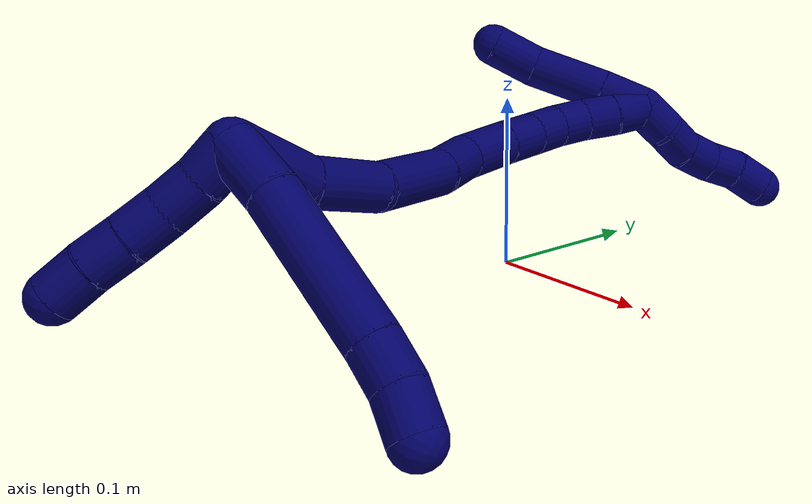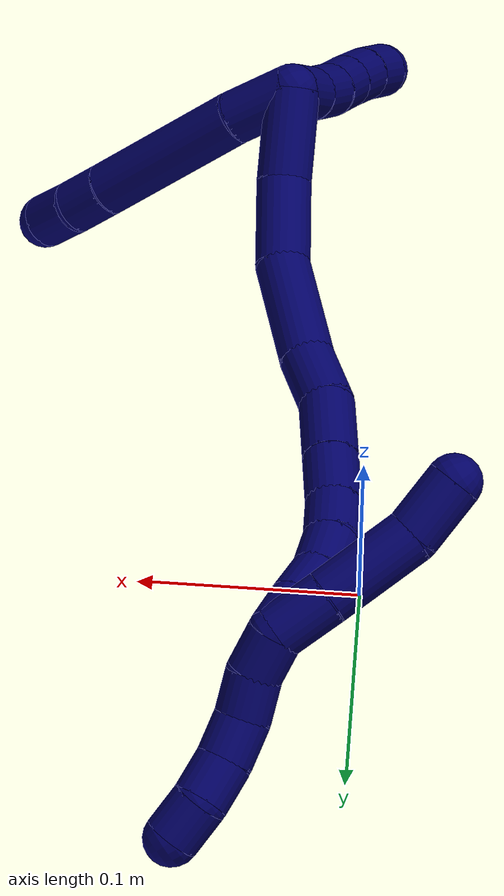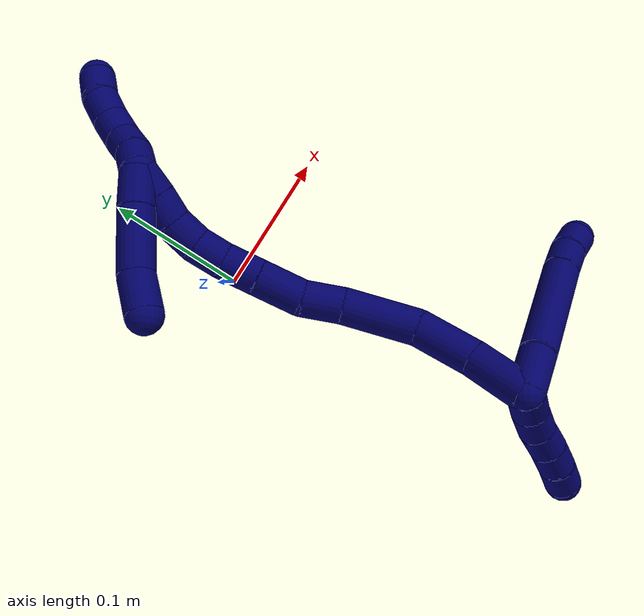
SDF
<sdf version="1.7">
 <world name="default">
  <model name="7">
   <static>0</static>
   <link name="7">
    <collision name="collision-cylinder-e_1_2_8">
     <pose>0.000372 -0.006271 -0.014303 2.7284 0.023795 0.113415</pose>
     <geometry><cylinder><radius>0.0125</radius><length>0.031244</length></cylinder></geometry>
     <surface>
      <friction><ode><mu>1.16</mu><mu2>1.16</mu2><slip1>0</slip1><slip2>0</slip2></ode></friction>
      <contact><ode><kp>1e+06</kp><kd>1</kd><max_vel>0</max_vel><min_depth>0.001</min_depth></ode></contact>
     </surface>
    </collision>
    <visual name="visual-cylinder-e_1_2_8">
     <pose>0.000372 -0.006271 -0.014303 2.7284 0.023795 0.113415</pose>
     <geometry><cylinder><radius>0.0125</radius><length>0.031244</length></cylinder></geometry>
     <material><ambient>0.003922 0 0.403922 1</ambient></material>
    </visual>
    <collision name="collision-cylinder-e_2_8_9">
     <pose>-0.002157 -0.030456 -0.062523 2.65566 -0.075473 -0.302315</pose>
     <geometry><cylinder><radius>0.0125</radius><length>0.076933</length></cylinder></geometry>
     <surface>
      <friction><ode><mu>1.16</mu><mu2>1.16</mu2><slip1>0</slip1><slip2>0</slip2></ode></friction>
      <contact><ode><kp>1e+06</kp><kd>1</kd><max_vel>0</max_vel><min_depth>0.001</min_depth></ode></contact>
     </surface>
    </collision>
    <visual name="visual-cylinder-e_2_8_9">
     <pose>-0.002157 -0.030456 -0.062523 2.65566 -0.075473 -0.302315</pose>
     <geometry><cylinder><radius>0.0125</radius><length>0.076933</length></cylinder></geometry>
     <material><ambient>0.003922 0 0.403922 1</ambient></material>
    </visual>
    <collision name="collision-cylinder-e_3_9_10">
     <pose>-0.005985 -0.053812 -0.105252 2.58838 -0.089312 -0.312255</pose>
     <geometry><cylinder><radius>0.0125</radius><length>0.020798</length></cylinder></geometry>
     <surface>
      <friction><ode><mu>1.16</mu><mu2>1.16</mu2><slip1>0</slip1><slip2>0</slip2></ode></friction>
      <contact><ode><kp>1e+06</kp><kd>1</kd><max_vel>0</max_vel><min_depth>0.001</min_depth></ode></contact>
     </surface>
    </collision>
    <visual name="visual-cylinder-e_3_9_10">
     <pose>-0.005985 -0.053812 -0.105252 2.58838 -0.089312 -0.312255</pose>
     <geometry><cylinder><radius>0.0125</radius><length>0.020798</length></cylinder></geometry>
     <material><ambient>0.003922 0 0.403922 1</ambient></material>
    </visual>
    <collision name="collision-cylinder-e_4_10_6">
     <pose>-0.008133 -0.066234 -0.121831 2.40944 -0.116329 -0.301487</pose>
     <geometry><cylinder><radius>0.0125</radius><length>0.021025</length></cylinder></geometry>
     <surface>
      <friction><ode><mu>1.16</mu><mu2>1.16</mu2><slip1>0</slip1><slip2>0</slip2></ode></friction>
      <contact><ode><kp>1e+06</kp><kd>1</kd><max_vel>0</max_vel><min_depth>0.001</min_depth></ode></contact>
     </surface>
    </collision>
    <visual name="visual-cylinder-e_4_10_6">
     <pose>-0.008133 -0.066234 -0.121831 2.40944 -0.116329 -0.301487</pose>
     <geometry><cylinder><radius>0.0125</radius><length>0.021025</length></cylinder></geometry>
     <material><ambient>0.003922 0 0.403922 1</ambient></material>
    </visual>
    <collision name="collision-cylinder-e_1_2_11">
     <pose>-0.005584 -0.007668 0.003166 1.17918 -0.592457 -0.402808</pose>
     <geometry><cylinder><radius>0.0125</radius><length>0.02</length></cylinder></geometry>
     <surface>
      <friction><ode><mu>1.16</mu><mu2>1.16</mu2><slip1>0</slip1><slip2>0</slip2></ode></friction>
      <contact><ode><kp>1e+06</kp><kd>1</kd><max_vel>0</max_vel><min_depth>0.001</min_depth></ode></contact>
     </surface>
    </collision>
    <visual name="visual-cylinder-e_1_2_11">
     <pose>-0.005584 -0.007668 0.003166 1.17918 -0.592457 -0.402808</pose>
     <geometry><cylinder><radius>0.0125</radius><length>0.02</length></cylinder></geometry>
     <material><ambient>0.003922 0 0.403922 1</ambient></material>
    </visual>
    <collision name="collision-cylinder-e_2_11_12">
     <pose>-0.015569 -0.023269 0.010538 1.08343 -0.455757 -0.277314</pose>
     <geometry><cylinder><radius>0.0125</radius><length>0.02</length></cylinder></geometry>
     <surface>
      <friction><ode><mu>1.16</mu><mu2>1.16</mu2><slip1>0</slip1><slip2>0</slip2></ode></friction>
      <contact><ode><kp>1e+06</kp><kd>1</kd><max_vel>0</max_vel><min_depth>0.001</min_depth></ode></contact>
     </surface>
    </collision>
    <visual name="visual-cylinder-e_2_11_12">
     <pose>-0.015569 -0.023269 0.010538 1.08343 -0.455757 -0.277314</pose>
     <geometry><cylinder><radius>0.0125</radius><length>0.02</length></cylinder></geometry>
     <material><ambient>0.003922 0 0.403922 1</ambient></material>
    </visual>
    <collision name="collision-cylinder-e_3_12_13">
     <pose>-0.023209 -0.039675 0.018954 1.10951 -0.329806 -0.205516</pose>
     <geometry><cylinder><radius>0.0125</radius><length>0.02</length></cylinder></geometry>
     <surface>
      <friction><ode><mu>1.16</mu><mu2>1.16</mu2><slip1>0</slip1><slip2>0</slip2></ode></friction>
      <contact><ode><kp>1e+06</kp><kd>1</kd><max_vel>0</max_vel><min_depth>0.001</min_depth></ode></contact>
     </surface>
    </collision>
    <visual name="visual-cylinder-e_3_12_13">
     <pose>-0.023209 -0.039675 0.018954 1.10951 -0.329806 -0.205516</pose>
     <geometry><cylinder><radius>0.0125</radius><length>0.02</length></cylinder></geometry>
     <material><ambient>0.003922 0 0.403922 1</ambient></material>
    </visual>
    <collision name="collision-cylinder-e_4_13_14">
     <pose>-0.029998 -0.056259 0.027813 1.05045 -0.362897 -0.211849</pose>
     <geometry><cylinder><radius>0.0125</radius><length>0.02</length></cylinder></geometry>
     <surface>
      <friction><ode><mu>1.16</mu><mu2>1.16</mu2><slip1>0</slip1><slip2>0</slip2></ode></friction>
      <contact><ode><kp>1e+06</kp><kd>1</kd><max_vel>0</max_vel><min_depth>0.001</min_depth></ode></contact>
     </surface>
    </collision>
    <visual name="visual-cylinder-e_4_13_14">
     <pose>-0.029998 -0.056259 0.027813 1.05045 -0.362897 -0.211849</pose>
     <geometry><cylinder><radius>0.0125</radius><length>0.02</length></cylinder></geometry>
     <material><ambient>0.003922 0 0.403922 1</ambient></material>
    </visual>
    <collision name="collision-cylinder-e_5_14_5">
     <pose>-0.037934 -0.072318 0.036655 1.08532 -0.454046 -0.276835</pose>
     <geometry><cylinder><radius>0.0125</radius><length>0.02</length></cylinder></geometry>
     <surface>
      <friction><ode><mu>1.16</mu><mu2>1.16</mu2><slip1>0</slip1><slip2>0</slip2></ode></friction>
      <contact><ode><kp>1e+06</kp><kd>1</kd><max_vel>0</max_vel><min_depth>0.001</min_depth></ode></contact>
     </surface>
    </collision>
    <visual name="visual-cylinder-e_5_14_5">
     <pose>-0.037934 -0.072318 0.036655 1.08532 -0.454046 -0.276835</pose>
     <geometry><cylinder><radius>0.0125</radius><length>0.02</length></cylinder></geometry>
     <material><ambient>0.003922 0 0.403922 1</ambient></material>
    </visual>
    <collision name="collision-cylinder-e_1_2_15">
     <pose>-0.014411 0.007955 -0.013148 -2.59746 -0.753267 1.91295</pose>
     <geometry><cylinder><radius>0.0125</radius><length>0.042134</length></cylinder></geometry>
     <surface>
      <friction><ode><mu>1.16</mu><mu2>1.16</mu2><slip1>0</slip1><slip2>0</slip2></ode></friction>
      <contact><ode><kp>1e+06</kp><kd>1</kd><max_vel>0</max_vel><min_depth>0.001</min_depth></ode></contact>
     </surface>
    </collision>
    <visual name="visual-cylinder-e_1_2_15">
     <pose>-0.014411 0.007955 -0.013148 -2.59746 -0.753267 1.91295</pose>
     <geometry><cylinder><radius>0.0125</radius><length>0.042134</length></cylinder></geometry>
     <material><ambient>0.003922 0 0.403922 1</ambient></material>
    </visual>
    <collision name="collision-cylinder-e_2_15_16">
     <pose>-0.040434 0.029324 -0.036821 -2.23613 -0.59796 1.12957</pose>
     <geometry><cylinder><radius>0.0125</radius><length>0.041257</length></cylinder></geometry>
     <surface>
      <friction><ode><mu>1.16</mu><mu2>1.16</mu2><slip1>0</slip1><slip2>0</slip2></ode></friction>
      <contact><ode><kp>1e+06</kp><kd>1</kd><max_vel>0</max_vel><min_depth>0.001</min_depth></ode></contact>
     </surface>
    </collision>
    <visual name="visual-cylinder-e_2_15_16">
     <pose>-0.040434 0.029324 -0.036821 -2.23613 -0.59796 1.12957</pose>
     <geometry><cylinder><radius>0.0125</radius><length>0.041257</length></cylinder></geometry>
     <material><ambient>0.003922 0 0.403922 1</ambient></material>
    </visual>
    <collision name="collision-cylinder-e_3_16_17">
     <pose>-0.066387 0.063122 -0.054211 -1.89561 -0.587982 0.797673</pose>
     <geometry><cylinder><radius>0.0125</radius><length>0.051705</length></cylinder></geometry>
     <surface>
      <friction><ode><mu>1.16</mu><mu2>1.16</mu2><slip1>0</slip1><slip2>0</slip2></ode></friction>
      <contact><ode><kp>1e+06</kp><kd>1</kd><max_vel>0</max_vel><min_depth>0.001</min_depth></ode></contact>
     </surface>
    </collision>
    <visual name="visual-cylinder-e_3_16_17">
     <pose>-0.066387 0.063122 -0.054211 -1.89561 -0.587982 0.797673</pose>
     <geometry><cylinder><radius>0.0125</radius><length>0.051705</length></cylinder></geometry>
     <material><ambient>0.003922 0 0.403922 1</ambient></material>
    </visual>
    <collision name="collision-cylinder-e_4_17_18">
     <pose>-0.087535 0.095444 -0.06283 -1.71674 -0.513819 0.590528</pose>
     <geometry><cylinder><radius>0.0125</radius><length>0.027705</length></cylinder></geometry>
     <surface>
      <friction><ode><mu>1.16</mu><mu2>1.16</mu2><slip1>0</slip1><slip2>0</slip2></ode></friction>
      <contact><ode><kp>1e+06</kp><kd>1</kd><max_vel>0</max_vel><min_depth>0.001</min_depth></ode></contact>
     </surface>
    </collision>
    <visual name="visual-cylinder-e_4_17_18">
     <pose>-0.087535 0.095444 -0.06283 -1.71674 -0.513819 0.590528</pose>
     <geometry><cylinder><radius>0.0125</radius><length>0.027705</length></cylinder></geometry>
     <material><ambient>0.003922 0 0.403922 1</ambient></material>
    </visual>
    <collision name="collision-cylinder-e_5_18_19">
     <pose>-0.100238 0.121027 -0.070321 -1.96874 -0.378887 0.561928</pose>
     <geometry><cylinder><radius>0.0125</radius><length>0.031868</length></cylinder></geometry>
     <surface>
      <friction><ode><mu>1.16</mu><mu2>1.16</mu2><slip1>0</slip1><slip2>0</slip2></ode></friction>
      <contact><ode><kp>1e+06</kp><kd>1</kd><max_vel>0</max_vel><min_depth>0.001</min_depth></ode></contact>
     </surface>
    </collision>
    <visual name="visual-cylinder-e_5_18_19">
     <pose>-0.100238 0.121027 -0.070321 -1.96874 -0.378887 0.561928</pose>
     <geometry><cylinder><radius>0.0125</radius><length>0.031868</length></cylinder></geometry>
     <material><ambient>0.003922 0 0.403922 1</ambient></material>
    </visual>
    <collision name="collision-cylinder-e_6_19_20">
     <pose>-0.110971 0.145186 -0.080666 -1.98393 -0.398995 0.600103</pose>
     <geometry><cylinder><radius>0.0125</radius><length>0.024911</length></cylinder></geometry>
     <surface>
      <friction><ode><mu>1.16</mu><mu2>1.16</mu2><slip1>0</slip1><slip2>0</slip2></ode></friction>
      <contact><ode><kp>1e+06</kp><kd>1</kd><max_vel>0</max_vel><min_depth>0.001</min_depth></ode></contact>
     </surface>
    </collision>
    <visual name="visual-cylinder-e_6_19_20">
     <pose>-0.110971 0.145186 -0.080666 -1.98393 -0.398995 0.600103</pose>
     <geometry><cylinder><radius>0.0125</radius><length>0.024911</length></cylinder></geometry>
     <material><ambient>0.003922 0 0.403922 1</ambient></material>
    </visual>
    <collision name="collision-cylinder-e_7_20_21">
     <pose>-0.118851 0.164368 -0.089726 -2.04514 -0.302467 0.489123</pose>
     <geometry><cylinder><radius>0.0125</radius><length>0.020418</length></cylinder></geometry>
     <surface>
      <friction><ode><mu>1.16</mu><mu2>1.16</mu2><slip1>0</slip1><slip2>0</slip2></ode></friction>
      <contact><ode><kp>1e+06</kp><kd>1</kd><max_vel>0</max_vel><min_depth>0.001</min_depth></ode></contact>
     </surface>
    </collision>
    <visual name="visual-cylinder-e_7_20_21">
     <pose>-0.118851 0.164368 -0.089726 -2.04514 -0.302467 0.489123</pose>
     <geometry><cylinder><radius>0.0125</radius><length>0.020418</length></cylinder></geometry>
     <material><ambient>0.003922 0 0.403922 1</ambient></material>
    </visual>
    <collision name="collision-cylinder-e_8_21_22">
     <pose>-0.12367 0.18091 -0.100081 -2.21428 -0.17873 0.354641</pose>
     <geometry><cylinder><radius>0.0125</radius><length>0.02</length></cylinder></geometry>
     <surface>
      <friction><ode><mu>1.16</mu><mu2>1.16</mu2><slip1>0</slip1><slip2>0</slip2></ode></friction>
      <contact><ode><kp>1e+06</kp><kd>1</kd><max_vel>0</max_vel><min_depth>0.001</min_depth></ode></contact>
     </surface>
    </collision>
    <visual name="visual-cylinder-e_8_21_22">
     <pose>-0.12367 0.18091 -0.100081 -2.21428 -0.17873 0.354641</pose>
     <geometry><cylinder><radius>0.0125</radius><length>0.02</length></cylinder></geometry>
     <material><ambient>0.003922 0 0.403922 1</ambient></material>
    </visual>
    <collision name="collision-cylinder-e_9_22_23">
     <pose>-0.125469 0.195456 -0.113433 -2.41094 -0.002135 0.005581</pose>
     <geometry><cylinder><radius>0.0125</radius><length>0.02</length></cylinder></geometry>
     <surface>
      <friction><ode><mu>1.16</mu><mu2>1.16</mu2><slip1>0</slip1><slip2>0</slip2></ode></friction>
      <contact><ode><kp>1e+06</kp><kd>1</kd><max_vel>0</max_vel><min_depth>0.001</min_depth></ode></contact>
     </surface>
    </collision>
    <visual name="visual-cylinder-e_9_22_23">
     <pose>-0.125469 0.195456 -0.113433 -2.41094 -0.002135 0.005581</pose>
     <geometry><cylinder><radius>0.0125</radius><length>0.02</length></cylinder></geometry>
     <material><ambient>0.003922 0 0.403922 1</ambient></material>
    </visual>
    <collision name="collision-cylinder-e_10_23_1">
     <pose>-0.125533 0.209405 -0.127741 -2.3269 -0.004287 0.009936</pose>
     <geometry><cylinder><radius>0.0125</radius><length>0.02</length></cylinder></geometry>
     <surface>
      <friction><ode><mu>1.16</mu><mu2>1.16</mu2><slip1>0</slip1><slip2>0</slip2></ode></friction>
      <contact><ode><kp>1e+06</kp><kd>1</kd><max_vel>0</max_vel><min_depth>0.001</min_depth></ode></contact>
     </surface>
    </collision>
    <visual name="visual-cylinder-e_10_23_1">
     <pose>-0.125533 0.209405 -0.127741 -2.3269 -0.004287 0.009936</pose>
     <geometry><cylinder><radius>0.0125</radius><length>0.02</length></cylinder></geometry>
     <material><ambient>0.003922 0 0.403922 1</ambient></material>
    </visual>
    <collision name="collision-cylinder-e_1_1_24">
     <pose>-0.125393 0.216272 -0.121276 0.030593 0.013735 0.00021</pose>
     <geometry><cylinder><radius>0.0125</radius><length>0.026667</length></cylinder></geometry>
     <surface>
      <friction><ode><mu>1.16</mu><mu2>1.16</mu2><slip1>0</slip1><slip2>0</slip2></ode></friction>
      <contact><ode><kp>1e+06</kp><kd>1</kd><max_vel>0</max_vel><min_depth>0.001</min_depth></ode></contact>
     </surface>
    </collision>
    <visual name="visual-cylinder-e_1_1_24">
     <pose>-0.125393 0.216272 -0.121276 0.030593 0.013735 0.00021</pose>
     <geometry><cylinder><radius>0.0125</radius><length>0.026667</length></cylinder></geometry>
     <material><ambient>0.003922 0 0.403922 1</ambient></material>
    </visual>
    <collision name="collision-cylinder-e_2_24_25">
     <pose>-0.125093 0.213714 -0.085732 0.096499 0.005222 0.000252</pose>
     <geometry><cylinder><radius>0.0125</radius><length>0.044643</length></cylinder></geometry>
     <surface>
      <friction><ode><mu>1.16</mu><mu2>1.16</mu2><slip1>0</slip1><slip2>0</slip2></ode></friction>
      <contact><ode><kp>1e+06</kp><kd>1</kd><max_vel>0</max_vel><min_depth>0.001</min_depth></ode></contact>
     </surface>
    </collision>
    <visual name="visual-cylinder-e_2_24_25">
     <pose>-0.125093 0.213714 -0.085732 0.096499 0.005222 0.000252</pose>
     <geometry><cylinder><radius>0.0125</radius><length>0.044643</length></cylinder></geometry>
     <material><ambient>0.003922 0 0.403922 1</ambient></material>
    </visual>
    <collision name="collision-cylinder-e_3_25_4">
     <pose>-0.12104 0.209564 -0.049866 0.145465 0.277977 0.020384</pose>
     <geometry><cylinder><radius>0.0125</radius><length>0.028689</length></cylinder></geometry>
     <surface>
      <friction><ode><mu>1.16</mu><mu2>1.16</mu2><slip1>0</slip1><slip2>0</slip2></ode></friction>
      <contact><ode><kp>1e+06</kp><kd>1</kd><max_vel>0</max_vel><min_depth>0.001</min_depth></ode></contact>
     </surface>
    </collision>
    <visual name="visual-cylinder-e_3_25_4">
     <pose>-0.12104 0.209564 -0.049866 0.145465 0.277977 0.020384</pose>
     <geometry><cylinder><radius>0.0125</radius><length>0.028689</length></cylinder></geometry>
     <material><ambient>0.003922 0 0.403922 1</ambient></material>
    </visual>
    <collision name="collision-cylinder-e_1_1_26">
     <pose>-0.130607 0.216462 -0.143242 3.1163 -0.527166 -3.04795</pose>
     <geometry><cylinder><radius>0.0125</radius><length>0.02</length></cylinder></geometry>
     <surface>
      <friction><ode><mu>1.16</mu><mu2>1.16</mu2><slip1>0</slip1><slip2>0</slip2></ode></friction>
      <contact><ode><kp>1e+06</kp><kd>1</kd><max_vel>0</max_vel><min_depth>0.001</min_depth></ode></contact>
     </surface>
    </collision>
    <visual name="visual-cylinder-e_1_1_26">
     <pose>-0.130607 0.216462 -0.143242 3.1163 -0.527166 -3.04795</pose>
     <geometry><cylinder><radius>0.0125</radius><length>0.02</length></cylinder></geometry>
     <material><ambient>0.003922 0 0.403922 1</ambient></material>
    </visual>
    <collision name="collision-cylinder-e_2_26_27">
     <pose>-0.142202 0.217499 -0.15932 -2.97433 -0.716036 2.70077</pose>
     <geometry><cylinder><radius>0.0125</radius><length>0.02</length></cylinder></geometry>
     <surface>
      <friction><ode><mu>1.16</mu><mu2>1.16</mu2><slip1>0</slip1><slip2>0</slip2></ode></friction>
      <contact><ode><kp>1e+06</kp><kd>1</kd><max_vel>0</max_vel><min_depth>0.001</min_depth></ode></contact>
     </surface>
    </collision>
    <visual name="visual-cylinder-e_2_26_27">
     <pose>-0.142202 0.217499 -0.15932 -2.97433 -0.716036 2.70077</pose>
     <geometry><cylinder><radius>0.0125</radius><length>0.02</length></cylinder></geometry>
     <material><ambient>0.003922 0 0.403922 1</ambient></material>
    </visual>
    <collision name="collision-cylinder-e_3_27_28">
     <pose>-0.153308 0.221934 -0.175081 -2.77668 -0.471546 1.83174</pose>
     <geometry><cylinder><radius>0.0125</radius><length>0.02</length></cylinder></geometry>
     <surface>
      <friction><ode><mu>1.16</mu><mu2>1.16</mu2><slip1>0</slip1><slip2>0</slip2></ode></friction>
      <contact><ode><kp>1e+06</kp><kd>1</kd><max_vel>0</max_vel><min_depth>0.001</min_depth></ode></contact>
     </surface>
    </collision>
    <visual name="visual-cylinder-e_3_27_28">
     <pose>-0.153308 0.221934 -0.175081 -2.77668 -0.471546 1.83174</pose>
     <geometry><cylinder><radius>0.0125</radius><length>0.02</length></cylinder></geometry>
     <material><ambient>0.003922 0 0.403922 1</ambient></material>
    </visual>
    <collision name="collision-cylinder-e_4_28_29">
     <pose>-0.160852 0.228793 -0.192204 -2.74555 -0.304776 1.30658</pose>
     <geometry><cylinder><radius>0.0125</radius><length>0.02</length></cylinder></geometry>
     <surface>
      <friction><ode><mu>1.16</mu><mu2>1.16</mu2><slip1>0</slip1><slip2>0</slip2></ode></friction>
      <contact><ode><kp>1e+06</kp><kd>1</kd><max_vel>0</max_vel><min_depth>0.001</min_depth></ode></contact>
     </surface>
    </collision>
    <visual name="visual-cylinder-e_4_28_29">
     <pose>-0.160852 0.228793 -0.192204 -2.74555 -0.304776 1.30658</pose>
     <geometry><cylinder><radius>0.0125</radius><length>0.02</length></cylinder></geometry>
     <material><ambient>0.003922 0 0.403922 1</ambient></material>
    </visual>
    <collision name="collision-cylinder-e_5_29_3">
     <pose>-0.167096 0.232961 -0.210451 -3.08999 -0.330332 2.83436</pose>
     <geometry><cylinder><radius>0.0125</radius><length>0.02</length></cylinder></geometry>
     <surface>
      <friction><ode><mu>1.16</mu><mu2>1.16</mu2><slip1>0</slip1><slip2>0</slip2></ode></friction>
      <contact><ode><kp>1e+06</kp><kd>1</kd><max_vel>0</max_vel><min_depth>0.001</min_depth></ode></contact>
     </surface>
    </collision>
    <visual name="visual-cylinder-e_5_29_3">
     <pose>-0.167096 0.232961 -0.210451 -3.08999 -0.330332 2.83436</pose>
     <geometry><cylinder><radius>0.0125</radius><length>0.02</length></cylinder></geometry>
     <material><ambient>0.003922 0 0.403922 1</ambient></material>
    </visual>
    <collision name="collision-sphere-3">
     <pose>-0.17034 0.233449 -0.219898 0 -0 0</pose>
     <geometry><sphere><radius>0.0125</radius></sphere></geometry>
     <surface>
      <friction><ode><mu>1.16</mu><mu2>1.16</mu2><slip1>0</slip1><slip2>0</slip2></ode></friction>
      <contact><ode><kp>1e+06</kp><kd>1</kd><max_vel>0</max_vel><min_depth>0.001</min_depth></ode></contact>
     </surface>
    </collision>
    <visual name="visual-sphere-3">
     <pose>-0.17034 0.233449 -0.219898 0 -0 0</pose>
     <geometry><sphere><radius>0.0125</radius></sphere></geometry>
     <material><ambient>0.003922 0 0.403922 1</ambient></material>
    </visual>
    <collision name="collision-sphere-29">
     <pose>-0.163852 0.232473 -0.201005 0 -0 0</pose>
     <geometry><sphere><radius>0.0125</radius></sphere></geometry>
     <surface>
      <friction><ode><mu>1.16</mu><mu2>1.16</mu2><slip1>0</slip1><slip2>0</slip2></ode></friction>
      <contact><ode><kp>1e+06</kp><kd>1</kd><max_vel>0</max_vel><min_depth>0.001</min_depth></ode></contact>
     </surface>
    </collision>
    <visual name="visual-sphere-29">
     <pose>-0.163852 0.232473 -0.201005 0 -0 0</pose>
     <geometry><sphere><radius>0.0125</radius></sphere></geometry>
     <material><ambient>0.003922 0 0.403922 1</ambient></material>
    </visual>
    <collision name="collision-sphere-28">
     <pose>-0.157851 0.225113 -0.183403 0 -0 0</pose>
     <geometry><sphere><radius>0.0125</radius></sphere></geometry>
     <surface>
      <friction><ode><mu>1.16</mu><mu2>1.16</mu2><slip1>0</slip1><slip2>0</slip2></ode></friction>
      <contact><ode><kp>1e+06</kp><kd>1</kd><max_vel>0</max_vel><min_depth>0.001</min_depth></ode></contact>
     </surface>
    </collision>
    <visual name="visual-sphere-28">
     <pose>-0.157851 0.225113 -0.183403 0 -0 0</pose>
     <geometry><sphere><radius>0.0125</radius></sphere></geometry>
     <material><ambient>0.003922 0 0.403922 1</ambient></material>
    </visual>
    <collision name="collision-sphere-27">
     <pose>-0.148766 0.218755 -0.166759 0 -0 0</pose>
     <geometry><sphere><radius>0.0125</radius></sphere></geometry>
     <surface>
      <friction><ode><mu>1.16</mu><mu2>1.16</mu2><slip1>0</slip1><slip2>0</slip2></ode></friction>
      <contact><ode><kp>1e+06</kp><kd>1</kd><max_vel>0</max_vel><min_depth>0.001</min_depth></ode></contact>
     </surface>
    </collision>
    <visual name="visual-sphere-27">
     <pose>-0.148766 0.218755 -0.166759 0 -0 0</pose>
     <geometry><sphere><radius>0.0125</radius></sphere></geometry>
     <material><ambient>0.003922 0 0.403922 1</ambient></material>
    </visual>
    <collision name="collision-sphere-26">
     <pose>-0.135638 0.216243 -0.151881 0 -0 0</pose>
     <geometry><sphere><radius>0.0125</radius></sphere></geometry>
     <surface>
      <friction><ode><mu>1.16</mu><mu2>1.16</mu2><slip1>0</slip1><slip2>0</slip2></ode></friction>
      <contact><ode><kp>1e+06</kp><kd>1</kd><max_vel>0</max_vel><min_depth>0.001</min_depth></ode></contact>
     </surface>
    </collision>
    <visual name="visual-sphere-26">
     <pose>-0.135638 0.216243 -0.151881 0 -0 0</pose>
     <geometry><sphere><radius>0.0125</radius></sphere></geometry>
     <material><ambient>0.003922 0 0.403922 1</ambient></material>
    </visual>
    <collision name="collision-sphere-4">
     <pose>-0.117104 0.207564 -0.036218 0 -0 0</pose>
     <geometry><sphere><radius>0.0125</radius></sphere></geometry>
     <surface>
      <friction><ode><mu>1.16</mu><mu2>1.16</mu2><slip1>0</slip1><slip2>0</slip2></ode></friction>
      <contact><ode><kp>1e+06</kp><kd>1</kd><max_vel>0</max_vel><min_depth>0.001</min_depth></ode></contact>
     </surface>
    </collision>
    <visual name="visual-sphere-4">
     <pose>-0.117104 0.207564 -0.036218 0 -0 0</pose>
     <geometry><sphere><radius>0.0125</radius></sphere></geometry>
     <material><ambient>0.003922 0 0.403922 1</ambient></material>
    </visual>
    <collision name="collision-sphere-25">
     <pose>-0.124977 0.211563 -0.063514 0 -0 0</pose>
     <geometry><sphere><radius>0.0125</radius></sphere></geometry>
     <surface>
      <friction><ode><mu>1.16</mu><mu2>1.16</mu2><slip1>0</slip1><slip2>0</slip2></ode></friction>
      <contact><ode><kp>1e+06</kp><kd>1</kd><max_vel>0</max_vel><min_depth>0.001</min_depth></ode></contact>
     </surface>
    </collision>
    <visual name="visual-sphere-25">
     <pose>-0.124977 0.211563 -0.063514 0 -0 0</pose>
     <geometry><sphere><radius>0.0125</radius></sphere></geometry>
     <material><ambient>0.003922 0 0.403922 1</ambient></material>
    </visual>
    <collision name="collision-sphere-24">
     <pose>-0.12521 0.215864 -0.10795 0 -0 0</pose>
     <geometry><sphere><radius>0.0125</radius></sphere></geometry>
     <surface>
      <friction><ode><mu>1.16</mu><mu2>1.16</mu2><slip1>0</slip1><slip2>0</slip2></ode></friction>
      <contact><ode><kp>1e+06</kp><kd>1</kd><max_vel>0</max_vel><min_depth>0.001</min_depth></ode></contact>
     </surface>
    </collision>
    <visual name="visual-sphere-24">
     <pose>-0.12521 0.215864 -0.10795 0 -0 0</pose>
     <geometry><sphere><radius>0.0125</radius></sphere></geometry>
     <material><ambient>0.003922 0 0.403922 1</ambient></material>
    </visual>
    <collision name="collision-sphere-1">
     <pose>-0.125576 0.21668 -0.134602 0 -0 0</pose>
     <geometry><sphere><radius>0.0125</radius></sphere></geometry>
     <surface>
      <friction><ode><mu>1.16</mu><mu2>1.16</mu2><slip1>0</slip1><slip2>0</slip2></ode></friction>
      <contact><ode><kp>1e+06</kp><kd>1</kd><max_vel>0</max_vel><min_depth>0.001</min_depth></ode></contact>
     </surface>
    </collision>
    <visual name="visual-sphere-1">
     <pose>-0.125576 0.21668 -0.134602 0 -0 0</pose>
     <geometry><sphere><radius>0.0125</radius></sphere></geometry>
     <material><ambient>0.003922 0 0.403922 1</ambient></material>
    </visual>
    <collision name="collision-sphere-23">
     <pose>-0.12549 0.20213 -0.12088 0 -0 0</pose>
     <geometry><sphere><radius>0.0125</radius></sphere></geometry>
     <surface>
      <friction><ode><mu>1.16</mu><mu2>1.16</mu2><slip1>0</slip1><slip2>0</slip2></ode></friction>
      <contact><ode><kp>1e+06</kp><kd>1</kd><max_vel>0</max_vel><min_depth>0.001</min_depth></ode></contact>
     </surface>
    </collision>
    <visual name="visual-sphere-23">
     <pose>-0.12549 0.20213 -0.12088 0 -0 0</pose>
     <geometry><sphere><radius>0.0125</radius></sphere></geometry>
     <material><ambient>0.003922 0 0.403922 1</ambient></material>
    </visual>
    <collision name="collision-sphere-22">
     <pose>-0.125447 0.188783 -0.105985 0 -0 0</pose>
     <geometry><sphere><radius>0.0125</radius></sphere></geometry>
     <surface>
      <friction><ode><mu>1.16</mu><mu2>1.16</mu2><slip1>0</slip1><slip2>0</slip2></ode></friction>
      <contact><ode><kp>1e+06</kp><kd>1</kd><max_vel>0</max_vel><min_depth>0.001</min_depth></ode></contact>
     </surface>
    </collision>
    <visual name="visual-sphere-22">
     <pose>-0.125447 0.188783 -0.105985 0 -0 0</pose>
     <geometry><sphere><radius>0.0125</radius></sphere></geometry>
     <material><ambient>0.003922 0 0.403922 1</ambient></material>
    </visual>
    <collision name="collision-sphere-21">
     <pose>-0.121892 0.173037 -0.094177 0 -0 0</pose>
     <geometry><sphere><radius>0.0125</radius></sphere></geometry>
     <surface>
      <friction><ode><mu>1.16</mu><mu2>1.16</mu2><slip1>0</slip1><slip2>0</slip2></ode></friction>
      <contact><ode><kp>1e+06</kp><kd>1</kd><max_vel>0</max_vel><min_depth>0.001</min_depth></ode></contact>
     </surface>
    </collision>
    <visual name="visual-sphere-21">
     <pose>-0.121892 0.173037 -0.094177 0 -0 0</pose>
     <geometry><sphere><radius>0.0125</radius></sphere></geometry>
     <material><ambient>0.003922 0 0.403922 1</ambient></material>
    </visual>
    <collision name="collision-sphere-11">
     <pose>-0.011168 -0.015335 0.006333 0 -0 0</pose>
     <geometry><sphere><radius>0.0125</radius></sphere></geometry>
     <surface>
      <friction><ode><mu>1.16</mu><mu2>1.16</mu2><slip1>0</slip1><slip2>0</slip2></ode></friction>
      <contact><ode><kp>1e+06</kp><kd>1</kd><max_vel>0</max_vel><min_depth>0.001</min_depth></ode></contact>
     </surface>
    </collision>
    <visual name="visual-sphere-11">
     <pose>-0.011168 -0.015335 0.006333 0 -0 0</pose>
     <geometry><sphere><radius>0.0125</radius></sphere></geometry>
     <material><ambient>0.003922 0 0.403922 1</ambient></material>
    </visual>
    <collision name="collision-sphere-6">
     <pose>-0.009353 -0.073214 -0.129597 0 -0 0</pose>
     <geometry><sphere><radius>0.0125</radius></sphere></geometry>
     <surface>
      <friction><ode><mu>1.16</mu><mu2>1.16</mu2><slip1>0</slip1><slip2>0</slip2></ode></friction>
      <contact><ode><kp>1e+06</kp><kd>1</kd><max_vel>0</max_vel><min_depth>0.001</min_depth></ode></contact>
     </surface>
    </collision>
    <visual name="visual-sphere-6">
     <pose>-0.009353 -0.073214 -0.129597 0 -0 0</pose>
     <geometry><sphere><radius>0.0125</radius></sphere></geometry>
     <material><ambient>0.003922 0 0.403922 1</ambient></material>
    </visual>
    <collision name="collision-sphere-10">
     <pose>-0.006913 -0.059254 -0.114065 0 -0 0</pose>
     <geometry><sphere><radius>0.0125</radius></sphere></geometry>
     <surface>
      <friction><ode><mu>1.16</mu><mu2>1.16</mu2><slip1>0</slip1><slip2>0</slip2></ode></friction>
      <contact><ode><kp>1e+06</kp><kd>1</kd><max_vel>0</max_vel><min_depth>0.001</min_depth></ode></contact>
     </surface>
    </collision>
    <visual name="visual-sphere-10">
     <pose>-0.006913 -0.059254 -0.114065 0 -0 0</pose>
     <geometry><sphere><radius>0.0125</radius></sphere></geometry>
     <material><ambient>0.003922 0 0.403922 1</ambient></material>
    </visual>
    <collision name="collision-sphere-9">
     <pose>-0.005057 -0.04837 -0.096439 0 -0 0</pose>
     <geometry><sphere><radius>0.0125</radius></sphere></geometry>
     <surface>
      <friction><ode><mu>1.16</mu><mu2>1.16</mu2><slip1>0</slip1><slip2>0</slip2></ode></friction>
      <contact><ode><kp>1e+06</kp><kd>1</kd><max_vel>0</max_vel><min_depth>0.001</min_depth></ode></contact>
     </surface>
    </collision>
    <visual name="visual-sphere-9">
     <pose>-0.005057 -0.04837 -0.096439 0 -0 0</pose>
     <geometry><sphere><radius>0.0125</radius></sphere></geometry>
     <material><ambient>0.003922 0 0.403922 1</ambient></material>
    </visual>
    <collision name="collision-sphere-2">
     <geometry><sphere><radius>0.0125</radius></sphere></geometry>
     <surface>
      <friction><ode><mu>1.16</mu><mu2>1.16</mu2><slip1>0</slip1><slip2>0</slip2></ode></friction>
      <contact><ode><kp>1e+06</kp><kd>1</kd><max_vel>0</max_vel><min_depth>0.001</min_depth></ode></contact>
     </surface>
    </collision>
    <visual name="visual-sphere-2">
     <geometry><sphere><radius>0.0125</radius></sphere></geometry>
     <material><ambient>0.003922 0 0.403922 1</ambient></material>
    </visual>
    <collision name="collision-sphere-19">
     <pose>-0.106132 0.134674 -0.076058 0 -0 0</pose>
     <geometry><sphere><radius>0.0125</radius></sphere></geometry>
     <surface>
      <friction><ode><mu>1.16</mu><mu2>1.16</mu2><slip1>0</slip1><slip2>0</slip2></ode></friction>
      <contact><ode><kp>1e+06</kp><kd>1</kd><max_vel>0</max_vel><min_depth>0.001</min_depth></ode></contact>
     </surface>
    </collision>
    <visual name="visual-sphere-19">
     <pose>-0.106132 0.134674 -0.076058 0 -0 0</pose>
     <geometry><sphere><radius>0.0125</radius></sphere></geometry>
     <material><ambient>0.003922 0 0.403922 1</ambient></material>
    </visual>
    <collision name="collision-sphere-8">
     <pose>0.000743 -0.012542 -0.028606 0 -0 0</pose>
     <geometry><sphere><radius>0.0125</radius></sphere></geometry>
     <surface>
      <friction><ode><mu>1.16</mu><mu2>1.16</mu2><slip1>0</slip1><slip2>0</slip2></ode></friction>
      <contact><ode><kp>1e+06</kp><kd>1</kd><max_vel>0</max_vel><min_depth>0.001</min_depth></ode></contact>
     </surface>
    </collision>
    <visual name="visual-sphere-8">
     <pose>0.000743 -0.012542 -0.028606 0 -0 0</pose>
     <geometry><sphere><radius>0.0125</radius></sphere></geometry>
     <material><ambient>0.003922 0 0.403922 1</ambient></material>
    </visual>
    <collision name="collision-sphere-12">
     <pose>-0.019971 -0.031203 0.014743 0 -0 0</pose>
     <geometry><sphere><radius>0.0125</radius></sphere></geometry>
     <surface>
      <friction><ode><mu>1.16</mu><mu2>1.16</mu2><slip1>0</slip1><slip2>0</slip2></ode></friction>
      <contact><ode><kp>1e+06</kp><kd>1</kd><max_vel>0</max_vel><min_depth>0.001</min_depth></ode></contact>
     </surface>
    </collision>
    <visual name="visual-sphere-12">
     <pose>-0.019971 -0.031203 0.014743 0 -0 0</pose>
     <geometry><sphere><radius>0.0125</radius></sphere></geometry>
     <material><ambient>0.003922 0 0.403922 1</ambient></material>
    </visual>
    <collision name="collision-sphere-13">
     <pose>-0.026448 -0.048147 0.023165 0 -0 0</pose>
     <geometry><sphere><radius>0.0125</radius></sphere></geometry>
     <surface>
      <friction><ode><mu>1.16</mu><mu2>1.16</mu2><slip1>0</slip1><slip2>0</slip2></ode></friction>
      <contact><ode><kp>1e+06</kp><kd>1</kd><max_vel>0</max_vel><min_depth>0.001</min_depth></ode></contact>
     </surface>
    </collision>
    <visual name="visual-sphere-13">
     <pose>-0.026448 -0.048147 0.023165 0 -0 0</pose>
     <geometry><sphere><radius>0.0125</radius></sphere></geometry>
     <material><ambient>0.003922 0 0.403922 1</ambient></material>
    </visual>
    <collision name="collision-sphere-14">
     <pose>-0.033548 -0.06437 0.032461 0 -0 0</pose>
     <geometry><sphere><radius>0.0125</radius></sphere></geometry>
     <surface>
      <friction><ode><mu>1.16</mu><mu2>1.16</mu2><slip1>0</slip1><slip2>0</slip2></ode></friction>
      <contact><ode><kp>1e+06</kp><kd>1</kd><max_vel>0</max_vel><min_depth>0.001</min_depth></ode></contact>
     </surface>
    </collision>
    <visual name="visual-sphere-14">
     <pose>-0.033548 -0.06437 0.032461 0 -0 0</pose>
     <geometry><sphere><radius>0.0125</radius></sphere></geometry>
     <material><ambient>0.003922 0 0.403922 1</ambient></material>
    </visual>
    <collision name="collision-sphere-5">
     <pose>-0.04232 -0.080267 0.040848 0 -0 0</pose>
     <geometry><sphere><radius>0.0125</radius></sphere></geometry>
     <surface>
      <friction><ode><mu>1.16</mu><mu2>1.16</mu2><slip1>0</slip1><slip2>0</slip2></ode></friction>
      <contact><ode><kp>1e+06</kp><kd>1</kd><max_vel>0</max_vel><min_depth>0.001</min_depth></ode></contact>
     </surface>
    </collision>
    <visual name="visual-sphere-5">
     <pose>-0.04232 -0.080267 0.040848 0 -0 0</pose>
     <geometry><sphere><radius>0.0125</radius></sphere></geometry>
     <material><ambient>0.003922 0 0.403922 1</ambient></material>
    </visual>
    <collision name="collision-sphere-15">
     <pose>-0.028821 0.015911 -0.026296 0 -0 0</pose>
     <geometry><sphere><radius>0.0125</radius></sphere></geometry>
     <surface>
      <friction><ode><mu>1.16</mu><mu2>1.16</mu2><slip1>0</slip1><slip2>0</slip2></ode></friction>
      <contact><ode><kp>1e+06</kp><kd>1</kd><max_vel>0</max_vel><min_depth>0.001</min_depth></ode></contact>
     </surface>
    </collision>
    <visual name="visual-sphere-15">
     <pose>-0.028821 0.015911 -0.026296 0 -0 0</pose>
     <geometry><sphere><radius>0.0125</radius></sphere></geometry>
     <material><ambient>0.003922 0 0.403922 1</ambient></material>
    </visual>
    <collision name="collision-sphere-16">
     <pose>-0.052047 0.042736 -0.047346 0 -0 0</pose>
     <geometry><sphere><radius>0.0125</radius></sphere></geometry>
     <surface>
      <friction><ode><mu>1.16</mu><mu2>1.16</mu2><slip1>0</slip1><slip2>0</slip2></ode></friction>
      <contact><ode><kp>1e+06</kp><kd>1</kd><max_vel>0</max_vel><min_depth>0.001</min_depth></ode></contact>
     </surface>
    </collision>
    <visual name="visual-sphere-16">
     <pose>-0.052047 0.042736 -0.047346 0 -0 0</pose>
     <geometry><sphere><radius>0.0125</radius></sphere></geometry>
     <material><ambient>0.003922 0 0.403922 1</ambient></material>
    </visual>
    <collision name="collision-sphere-17">
     <pose>-0.080727 0.083508 -0.061076 0 -0 0</pose>
     <geometry><sphere><radius>0.0125</radius></sphere></geometry>
     <surface>
      <friction><ode><mu>1.16</mu><mu2>1.16</mu2><slip1>0</slip1><slip2>0</slip2></ode></friction>
      <contact><ode><kp>1e+06</kp><kd>1</kd><max_vel>0</max_vel><min_depth>0.001</min_depth></ode></contact>
     </surface>
    </collision>
    <visual name="visual-sphere-17">
     <pose>-0.080727 0.083508 -0.061076 0 -0 0</pose>
     <geometry><sphere><radius>0.0125</radius></sphere></geometry>
     <material><ambient>0.003922 0 0.403922 1</ambient></material>
    </visual>
    <collision name="collision-sphere-18">
     <pose>-0.094344 0.10738 -0.064584 0 -0 0</pose>
     <geometry><sphere><radius>0.0125</radius></sphere></geometry>
     <surface>
      <friction><ode><mu>1.16</mu><mu2>1.16</mu2><slip1>0</slip1><slip2>0</slip2></ode></friction>
      <contact><ode><kp>1e+06</kp><kd>1</kd><max_vel>0</max_vel><min_depth>0.001</min_depth></ode></contact>
     </surface>
    </collision>
    <visual name="visual-sphere-18">
     <pose>-0.094344 0.10738 -0.064584 0 -0 0</pose>
     <geometry><sphere><radius>0.0125</radius></sphere></geometry>
     <material><ambient>0.003922 0 0.403922 1</ambient></material>
    </visual>
    <collision name="collision-sphere-20">
     <pose>-0.11581 0.155698 -0.085274 0 -0 0</pose>
     <geometry><sphere><radius>0.0125</radius></sphere></geometry>
     <surface>
      <friction><ode><mu>1.16</mu><mu2>1.16</mu2><slip1>0</slip1><slip2>0</slip2></ode></friction>
      <contact><ode><kp>1e+06</kp><kd>1</kd><max_vel>0</max_vel><min_depth>0.001</min_depth></ode></contact>
     </surface>
    </collision>
    <visual name="visual-sphere-20">
     <pose>-0.11581 0.155698 -0.085274 0 -0 0</pose>
     <geometry><sphere><radius>0.0125</radius></sphere></geometry>
     <material><ambient>0.003922 0 0.403922 1</ambient></material>
    </visual>
    <inertial>
     <pose>-0.072254 0.086183 -0.071584 0 -0 0</pose>
     <mass>0.75</mass>
     <inertia><ixx>8.1e-05</ixx><ixy>0</ixy><ixz>0</ixz><iyy>7e-06</iyy><iyz>0</iyz><izz>1.2e-05</izz></inertia>
    </inertial>
   </link>
   <pose>0.04529 -0.200963 0.107817 1.00628 -0.834495 -0.581306</pose>
  </model>
 </world>
</sdf>
